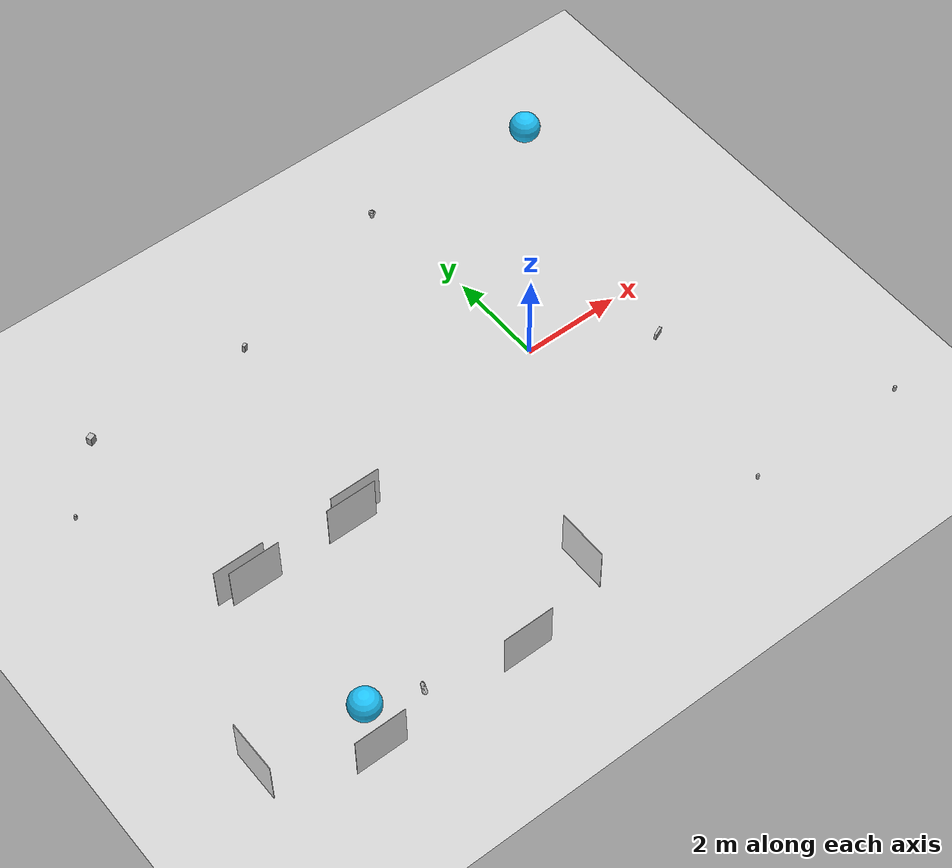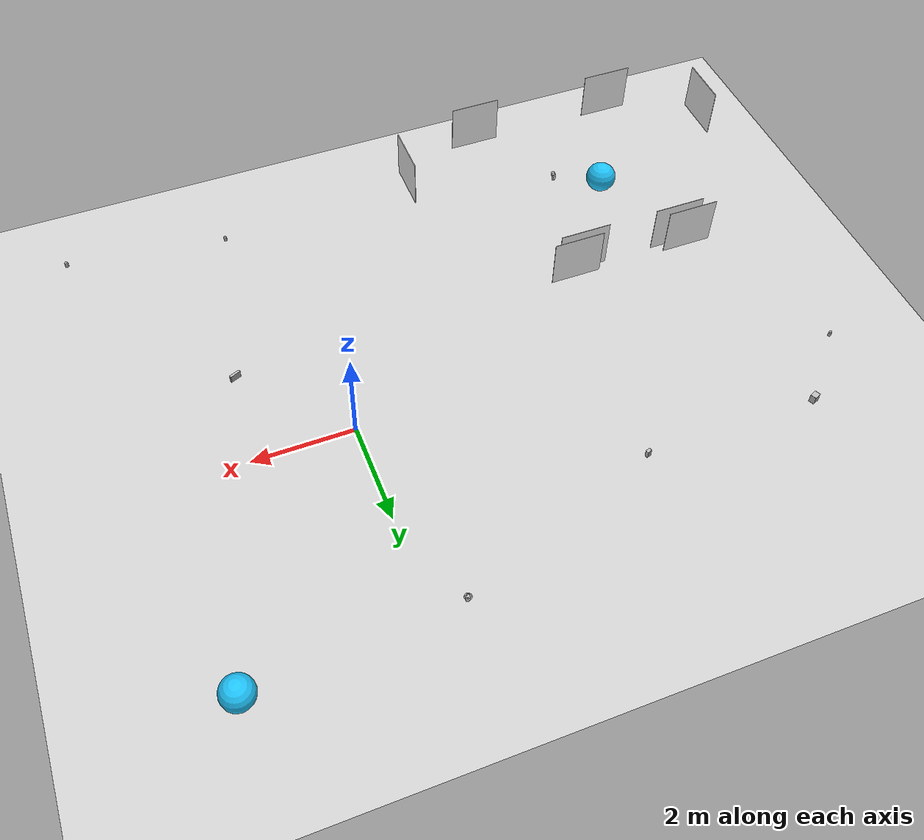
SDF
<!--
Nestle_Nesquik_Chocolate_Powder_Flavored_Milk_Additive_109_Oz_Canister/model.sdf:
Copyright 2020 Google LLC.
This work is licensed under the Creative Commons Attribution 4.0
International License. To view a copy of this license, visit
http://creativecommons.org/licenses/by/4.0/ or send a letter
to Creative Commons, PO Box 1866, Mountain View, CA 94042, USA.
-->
<sdf version="1.6">
 <world name="default">
  <physics name="5ms" type="dart">
   <max_step_size>0.005</max_step_size>
   <real_time_factor>1.0</real_time_factor>
  </physics>
  <plugin filename="gz-sim-physics-system" name="gz::sim::systems::Physics"/>
  <plugin filename="gz-sim-user-commands-system" name="gz::sim::systems::UserCommands"/>
  <plugin filename="gz-sim-scene-broadcaster-system" name="gz::sim::systems::SceneBroadcaster"/>
  <plugin filename="gz-sim-sensors-system" name="gz::sim::systems::Sensors"/>
  <plugin filename="gz-sim-imu-system" name="gz::sim::systems::Imu"/>
  <scene>
   <ambient>0.4 0.4 0.4 1</ambient>
   <background>0.7 0.7 0.7 1</background>
   <shadows>false</shadows>
   <grid>false</grid>
   <origin_visual>false</origin_visual>
  </scene>
  <model name="ground_plane">
   <static>true</static>
   <link name="link">
    <collision name="collision">
     <geometry><plane><normal>0 0 1</normal><size>100 100</size></plane></geometry>
     <surface><friction><ode><mu>0.0</mu><mu2>0.0</mu2></ode></friction></surface>
    </collision>
    <visual name="visual">
     <geometry><plane><normal>0 0 1</normal><size>100 100</size></plane></geometry>
     <material>
      <ambient>0.8 0.8 0.8 1</ambient>
      <diffuse>0.8 0.8 0.8 1</diffuse>
      <specular>0.8 0.8 0.8 1</specular>
     </material>
    </visual>
   </link>
  </model>
  <model name="Ball_01_001">
   <static>true</static>
   <include><uri>model://aws_robomaker_residential_Ball_01</uri></include>
   <pose>3.295503 4.225674 0.318684 0 -0 0</pose>
  </model>
  <model name="Ball_01_003">
   <static>true</static>
   <include><uri>model://aws_robomaker_residential_Ball_01</uri></include>
   <pose>-6.945503 -4.22174 0.318684 0 -0 0</pose>
  </model>
  <model name="AprilTag16_05_01">
   <static>true</static>
   <include><uri>model://AprilTag16_05_01</uri></include>
   <pose>-7.5 -5.492466 1.5 0 0 0</pose>
  </model>
  <model name="AprilTag16_05_02">
   <static>true</static>
   <include><uri>model://AprilTag16_05_02</uri></include>
   <pose>-4.5 -5.492466 1.5 0 0 0</pose>
  </model>
  <model name="AprilTag16_05_03">
   <static>true</static>
   <include><uri>model://AprilTag16_05_03</uri></include>
   <pose>-2.71 -4.71 1.5  0 0 1.5708</pose>
  </model>
  <model name="AprilTag16_05_04">
   <static>true</static>
   <include><uri>model://AprilTag16_05_04</uri></include>
   <pose>-9.29 -4.52 1.5 0 0 1.5708</pose>
  </model>
  <model name="AprilTag16_05_05">
   <static>true</static>
   <include><uri>model://AprilTag16_05_05</uri></include>
   <pose>-7.19 -1.570208 1.3 0 0 0</pose>
  </model>
  <model name="AprilTag16_05_06">
   <static>true</static>
   <include><uri>model://AprilTag16_05_06</uri></include>
   <pose>-5.19 -1.570208 1.3 0 0 0</pose>
  </model>
  <model name="AprilTag16_05_07">
   <static>true</static>
   <include><uri>model://AprilTag16_05_07</uri></include>
   <pose>-7.39 -1.4087 1.3 0 0 0</pose>
  </model>
  <model name="AprilTag16_05_08">
   <static>true</static>
   <include><uri>model://AprilTag16_05_08</uri></include>
   <pose>-4.99 -1.4087 1.3 0 0 0</pose>
  </model>
  <model name="coke_green_01">
   <static>false</static>
   <include><uri>model://movable_coke_can_green</uri></include>
   <pose>4.2 -5.2 0.75 0 0 0.4</pose>
  </model>
  <model name="milk_cup_01">
   <static>false</static>
   <include><uri>model://milk_cup</uri></include>
   <pose>-0.55 4.11 0.55 0 0 0</pose>
  </model>
  <model name="nesquick_01">
   <static>false</static>
   <include><uri>model://Nestle_Nesquik_Chocolate_Powder_Flavored_Milk_Additive_109_Oz_Canister</uri></include>
   <pose>1.1 -5.0 0.55 0 0 -0.4</pose>
  </model>
  <model name="snacks_01">
   <static>false</static>
   <include><uri>model://Black_Forest_Fruit_Snacks_Juicy_Filled_Centers_10_pouches_9_oz_total</uri></include>
   <pose>1.8 -1.5 0.55 0 0 0.4</pose>
  </model>
  <model name="l_tyrosine_01">
   <static>false</static>
   <include><uri>model://LTyrosine</uri></include>
   <pose>-8.8 1.6 0.75 0 0 0.4</pose>
  </model>
  <model name="u_by_kotex_01">
   <static>false</static>
   <include><uri>model://U_By_Kotex_Cleanwear_Heavy_Flow_Pads_32_Ct</uri></include>
   <pose>-7.7 2.8 0.75 0 0 0.4</pose>
  </model>
  <model name="nescafe_01">
   <static>false</static>
   <include><uri>model://Nescafe_Memento_Latte_Caramel_8_08_oz_23_g_packets_64_oz_184_g</uri></include>
   <pose>-4.4 2.8 0.75 0 0 0.4</pose>
  </model>
  <model name="tennis_shoe_01">
   <static>false</static>
   <include><uri>model://ASICS_GELBlur33_20_GS_BlackWhiteSafety_Orange</uri></include>
   <pose>-6.0 -4.6 0.3 0 0 -0.3</pose>
  </model>
  <light name="sun" type="directional">
   <pose>0 0 10 0 -0 0</pose>
   <diffuse>0.8 0.8 0.8 1</diffuse>
   <specular>0.2 0.2 0.2 1</specular>
   <attenuation>
    <range>1000</range>
    <constant>0.9</constant>
    <linear>0.01</linear>
    <quadratic>0.001</quadratic>
   </attenuation>
   <direction>-0.5 0.1 -0.9</direction>
  </light>
  <light name="LivingRoom_CeilingLight_0" type="point">
   <pose>1.194296 4.155759 2.2 0 -0 0</pose>
   <diffuse>0.5 0.5 0.5 1</diffuse>
   <specular>0.1 0.1 0.1 1</specular>
   <attenuation>
    <range>20</range>
    <constant>0.32</constant>
    <linear>0.01</linear>
    <quadratic>0.03</quadratic>
   </attenuation>
   <cast_shadows>0</cast_shadows>
   <direction>0 0 -1</direction>
  </light>
  <light name="LivingRoom_CeilingLight_1" type="point">
   <pose>1.194296 -1.589959 2.2 0 -0 0</pose>
   <diffuse>0.5 0.5 0.5 1</diffuse>
   <specular>0.1 0.1 0.1 1</specular>
   <attenuation>
    <range>20</range>
    <constant>0.05</constant>
    <linear>0.01</linear>
    <quadratic>0.09</quadratic>
   </attenuation>
   <cast_shadows>0</cast_shadows>
   <direction>0 0 -1</direction>
  </light>
  <light name="LivingRoom_WallLight_0" type="point">
   <pose>1.76956 -5.444370 2.2 0 -0 0</pose>
   <diffuse>0.24 0.24 0.24 1</diffuse>
   <specular>0.1 0.1 0.1 1</specular>
   <attenuation>
    <range>20</range>
    <constant>0.12</constant>
    <linear>0.00</linear>
    <quadratic>0.03</quadratic>
   </attenuation>
   <direction>0 0 -1</direction>
  </light>
  <light name="LivingRoom_WallLight_1" type="point">
   <pose>-0.13826 -5.444370 2.2 0 -0 0</pose>
   <diffuse>0.24 0.24 0.24 1</diffuse>
   <specular>0.1 0.1 0.1 1</specular>
   <attenuation>
    <range>20</range>
    <constant>0.12</constant>
    <linear>0.00</linear>
    <quadratic>0.03</quadratic>
   </attenuation>
   <direction>0 0 -1</direction>
  </light>
  <light name="TV_Light_0" type="point">
   <pose>0.8269 -4.939577 1.1 0 -0 0</pose>
   <diffuse>0.31372 0.31372 0.34901 1</diffuse>
   <specular>0.1 0.1 0.1 1</specular>
   <attenuation>
    <range>3</range>
    <constant>0.10</constant>
    <linear>0.04</linear>
    <quadratic>0.50</quadratic>
   </attenuation>
   <direction>0 0 -1</direction>
  </light>
  <light name="BedRoom_Portrait_Light_0" type="spot">
   <pose>-6.190379 -1.829697 1.5587 0.3 -0 0.0</pose>
   <diffuse>0.5 0.5 0.5 1</diffuse>
   <specular>0.1 0.1 0.1 1</specular>
   <attenuation>
    <range>20</range>
    <constant>0.50</constant>
    <linear>0.01</linear>
    <quadratic>0.00</quadratic>
   </attenuation>
   <spot><inner_angle>0.6</inner_angle><outer_angle>1.0</outer_angle><falloff>1.0</falloff></spot>
   <direction>0 0 -1</direction>
  </light>
  <light name="BedRoom_CeilingLight_0" type="point">
   <pose>-6.451061 -0.692040 2.000000 0 -0 0</pose>
   <diffuse>0.5 0.5 0.5 1</diffuse>
   <specular>0.1 0.1 0.1 1</specular>
   <attenuation>
    <range>20</range>
    <constant>0.32</constant>
    <linear>0.01</linear>
    <quadratic>0.03</quadratic>
   </attenuation>
   <cast_shadows>0</cast_shadows>
   <direction>0 0 -1</direction>
  </light>
  <light name="Kitchen_CeilingLight_0" type="point">
   <pose>7.8582 -1.5905 2.280000 0 -0 0</pose>
   <diffuse>0.5 0.5 0.5 1</diffuse>
   <specular>0.1 0.1 0.1 1</specular>
   <attenuation>
    <range>20</range>
    <constant>0.3</constant>
    <linear>0.01</linear>
    <quadratic>0.01</quadratic>
   </attenuation>
   <cast_shadows>0</cast_shadows>
   <direction>0 0 -1</direction>
  </light>
 </world>
</sdf>

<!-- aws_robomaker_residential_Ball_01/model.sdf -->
<sdf version="1.6">
  <model name="aws_robomaker_residential_Ball_01">
    <link name="link">
      <inertial>
        <mass>0.12</mass>
        <!-- 2r = 62cm -->
        <inertia>
          <ixx>0.030752</ixx>
          <ixy>0</ixy>
          <ixz>0</ixz>
          <iyy>0.030752</iyy>
          <iyz>0</iyz>
          <izz>0.030752</izz>
        </inertia>
      </inertial>
      <collision name="collision">

        <geometry>
          <sphere>
            <radius>0.31 </radius>
          </sphere>

        </geometry>

        <surface>
          <friction>
            <ode>
              <mu>0.85</mu>
              <mu2>0.85</mu2>
            </ode>
          </friction>

          <!-- Add some bounciness to the ball -->
          <contact>
            <ode>
              <kd>8500</kd>
              <max_vel>5.1</max_vel>
            </ode>
          </contact>
        </surface>

      </collision>
      <visual name="visual">
	<geometry>
          <sphere>
            <radius>0.31 </radius>
          </sphere>
        </geometry>
        <material>
          <diffuse>0.12 0.76 0.97 1</diffuse>
          <ambient>0.03 0.21 0.27 1</ambient>
        </material>
        <meta> <layer> 1 </layer></meta>
      </visual>
    </link>
    <static>true</static>
  </model>
</sdf>

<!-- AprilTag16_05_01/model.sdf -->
<sdf version="1.6">
  <model name="AprilTag16_05_01">
    <link name="link">
      <collision name="collision">
        <geometry>
          <box><size>1.0 0.01 1.0</size></box>
        </geometry>
      </collision>
      <visual name="visual">
        <geometry>
          <box><size>1.0 0.01 1.0</size></box>
        </geometry>
        <material>
          <diffuse>1 1 1 1</diffuse>
          <pbr>
            <metal>
              <albedo_map>model://AprilTag16_05_01/meshes/tag16_05_00001.png</albedo_map>
            </metal>
          </pbr>
        </material>
      </visual>
    </link>
    <static>1</static>
  </model>
</sdf>

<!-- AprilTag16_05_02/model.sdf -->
<sdf version="1.6">
  <model name="AprilTag16_05_02">
    <link name="link">
      <collision name="collision">
        <geometry>
          <box><size>1.0 0.01 1.0</size></box>
        </geometry>
      </collision>
      <visual name="visual">
        <geometry>
          <box><size>1.0 0.01 1.0</size></box>
        </geometry>
        <material>
          <diffuse>1 1 1 1</diffuse>
          <pbr>
            <metal>
              <albedo_map>model://AprilTag16_05_02/meshes/tag16_05_00002.png</albedo_map>
            </metal>
          </pbr>
        </material>
      </visual>
    </link>
    <static>1</static>
  </model>
</sdf>

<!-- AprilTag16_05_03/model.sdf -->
<sdf version="1.6">
  <model name="AprilTag16_05_03">
    <link name="link">
      <collision name="collision">
        <geometry>
          <box><size>1.0 0.01 1.0</size></box>
        </geometry>
      </collision>
      <visual name="visual">
        <geometry>
          <box><size>1.0 0.01 1.0</size></box>
        </geometry>
        <material>
          <diffuse>1 1 1 1</diffuse>
          <pbr>
            <metal>
              <albedo_map>model://AprilTag16_05_03/meshes/tag16_05_00003.png</albedo_map>
            </metal>
          </pbr>
        </material>
      </visual>
    </link>
    <static>1</static>
  </model>
</sdf>

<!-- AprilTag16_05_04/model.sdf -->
<sdf version="1.6">
  <model name="AprilTag16_05_04">
    <link name="link">
      <collision name="collision">
        <geometry>
          <box><size>1.0 0.01 1.0</size></box>
        </geometry>
      </collision>
      <visual name="visual">
        <geometry>
          <box><size>1.0 0.01 1.0</size></box>
        </geometry>
        <material>
          <diffuse>1 1 1 1</diffuse>
          <pbr>
            <metal>
              <albedo_map>model://AprilTag16_05_04/meshes/tag16_05_00004.png</albedo_map>
            </metal>
          </pbr>
        </material>
      </visual>
    </link>
    <static>1</static>
  </model>
</sdf>

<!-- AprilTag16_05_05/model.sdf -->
<sdf version="1.6">
  <model name="AprilTag16_05_05">
    <link name="link">
      <collision name="collision">
        <geometry>
          <box><size>1.0 0.01 1.0</size></box>
        </geometry>
      </collision>
      <visual name="visual">
        <geometry>
          <box><size>1.0 0.01 1.0</size></box>
        </geometry>
        <material>
          <diffuse>1 1 1 1</diffuse>
          <pbr>
            <metal>
              <albedo_map>model://AprilTag16_05_05/meshes/tag16_05_00005.png</albedo_map>
            </metal>
          </pbr>
        </material>
      </visual>
    </link>
    <static>1</static>
  </model>
</sdf>

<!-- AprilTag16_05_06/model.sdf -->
<sdf version="1.6">
  <model name="AprilTag16_05_06">
    <link name="link">
      <collision name="collision">
        <geometry>
          <box><size>1.0 0.01 1.0</size></box>
        </geometry>
      </collision>
      <visual name="visual">
        <geometry>
          <box><size>1.0 0.01 1.0</size></box>
        </geometry>
        <material>
          <diffuse>1 1 1 1</diffuse>
          <pbr>
            <metal>
              <albedo_map>model://AprilTag16_05_06/meshes/tag16_05_00006.png</albedo_map>
            </metal>
          </pbr>
        </material>
      </visual>
    </link>
    <static>1</static>
  </model>
</sdf>

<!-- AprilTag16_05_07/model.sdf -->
<sdf version="1.6">
  <model name="AprilTag16_05_07">
    <link name="link">
      <collision name="collision">
        <geometry>
          <box><size>1.0 0.01 1.0</size></box>
        </geometry>
      </collision>
      <visual name="visual">
        <geometry>
          <box><size>1.0 0.01 1.0</size></box>
        </geometry>
        <material>
          <diffuse>1 1 1 1</diffuse>
          <pbr>
            <metal>
              <albedo_map>model://AprilTag16_05_07/meshes/tag16_05_00007.png</albedo_map>
            </metal>
          </pbr>
        </material>
      </visual>
    </link>
    <static>1</static>
  </model>
</sdf>

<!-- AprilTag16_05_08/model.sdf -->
<sdf version="1.6">
  <model name="AprilTag16_05_08">
    <link name="link">
      <collision name="collision">
        <geometry>
          <box><size>1.0 0.01 1.0</size></box>
        </geometry>
      </collision>
      <visual name="visual">
        <geometry>
          <box><size>1.0 0.01 1.0</size></box>
        </geometry>
        <material>
          <diffuse>1 1 1 1</diffuse>
          <pbr>
            <metal>
              <albedo_map>model://AprilTag16_05_08/meshes/tag16_05_00008.png</albedo_map>
            </metal>
          </pbr>
        </material>
      </visual>
    </link>
    <static>1</static>
  </model>
</sdf>

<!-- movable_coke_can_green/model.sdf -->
<sdf version="1.6">
    <model name="movable_coke_can_green">
        <link name="link">
            <inertial>
                <pose>0 0 0 0 0 0</pose>
                <mass>0.0149</mass>
                <inertia>
                <ixx>0.00001</ixx>
                <ixy>0.0</ixy>
                <ixz>0.0</ixz>
                <iyy>0.00001</iyy>
                <iyz>0.0</iyz>
                <izz>0.00001</izz>
                </inertia>
            </inertial>
            <collision name="collision">
                <pose>0 0 0.061 0 0 0</pose>
                <geometry>
                    <cylinder>
                    <radius>0.033</radius>
                    <length>0.122</length>
                    </cylinder>
                </geometry>
            </collision>
            <visual name="visual">
                <geometry>
                    <mesh>
                        <uri>model://movable_coke_can_green/meshes/coke_can.obj</uri>
                        <scale>1 1 1</scale>
                    </mesh>
                </geometry>
            </visual>
        </link>
    </model>
</sdf>

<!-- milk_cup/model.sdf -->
<sdf version="1.11">
  <model name="milk_cup">
    <link name="body">
      <inertial auto="true" />
      <collision name="collision">
        <density>10.0</density>
        <geometry>
          <mesh optimization="convex_decomposition">
            <uri>models://milk_cup/mesh.obj</uri>
            <scale>0.06 0.06 0.06</scale>
          </mesh>
        </geometry>
      </collision>
      <visual name="visual">
        <geometry>
          <mesh>
            <uri>models://milk_cup/mesh.obj</uri>
            <scale>0.06 0.06 0.06</scale>
          </mesh>
        </geometry>
      </visual>
    </link>
  </model>
</sdf>

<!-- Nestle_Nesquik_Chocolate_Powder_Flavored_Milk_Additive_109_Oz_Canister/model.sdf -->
<sdf version="1.6">
  <model name="Nestle_Nesquik_Chocolate_Powder_Flavored_Milk_Additive_109_Oz_Canister">
    <link name="link_0">
      <visual name="visual">
        <geometry>
          <mesh>
            <uri>meshes/model.obj</uri>
          </mesh>
        </geometry>
      </visual>
      <collision name="collision_0">
        <geometry>
          <mesh>
            <uri>meshes/model.obj</uri>
          </mesh>
        </geometry>
      </collision>
    </link>
  </model>
</sdf>

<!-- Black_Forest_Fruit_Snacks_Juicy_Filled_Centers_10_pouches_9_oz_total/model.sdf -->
<sdf version="1.6">
  <model name="Black_Forest_Fruit_Snacks_Juicy_Filled_Centers_10_pouches_9_oz_total">
    <link name="link_0">
      <visual name="visual">
        <geometry>
          <mesh>
            <uri>meshes/model.obj</uri>
          </mesh>
        </geometry>
      </visual>
      <collision name="collision_0">
        <geometry>
          <mesh>
            <uri>meshes/model.obj</uri>
          </mesh>
        </geometry>
      </collision>
    </link>
  </model>
</sdf>

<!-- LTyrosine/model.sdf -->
<sdf version="1.6">
  <model name="LTyrosine">
    <link name="link_0">
      <visual name="visual">
        <geometry>
          <mesh>
            <uri>meshes/model.obj</uri>
          </mesh>
        </geometry>
      </visual>
      <collision name="collision_0">
        <geometry>
          <mesh>
            <uri>meshes/model.obj</uri>
          </mesh>
        </geometry>
      </collision>
    </link>
  </model>
</sdf>

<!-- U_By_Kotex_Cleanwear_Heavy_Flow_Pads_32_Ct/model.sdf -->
<sdf version="1.6">
  <model name="U_By_Kotex_Cleanwear_Heavy_Flow_Pads_32_Ct">
    <link name="link_0">
      <visual name="visual">
        <geometry>
          <mesh>
            <uri>meshes/model.obj</uri>
          </mesh>
        </geometry>
      </visual>
      <collision name="collision_0">
        <geometry>
          <mesh>
            <uri>meshes/model.obj</uri>
          </mesh>
        </geometry>
      </collision>
    </link>
  </model>
</sdf>

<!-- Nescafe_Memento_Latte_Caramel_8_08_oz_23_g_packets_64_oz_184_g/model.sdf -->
<sdf version="1.6">
  <model name="Nescafe_Memento_Latte_Caramel_8_08_oz_23_g_packets_64_oz_184_g">
    <link name="link_0">
      <visual name="visual">
        <geometry>
          <mesh>
            <uri>meshes/model.obj</uri>
          </mesh>
        </geometry>
      </visual>
      <collision name="collision_0">
        <geometry>
          <mesh>
            <uri>meshes/model.obj</uri>
          </mesh>
        </geometry>
      </collision>
    </link>
  </model>
</sdf>

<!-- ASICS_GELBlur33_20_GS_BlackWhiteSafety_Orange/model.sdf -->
<sdf version="1.6">
  <model name="ASICS_GELBlur33_20_GS_BlackWhiteSafety_Orange">
    <link name="link_0">
      <visual name="visual">
        <geometry>
          <mesh>
            <uri>meshes/model.obj</uri>
          </mesh>
        </geometry>
      </visual>
      <collision name="collision_0">
        <geometry>
          <mesh>
            <uri>meshes/model.obj</uri>
          </mesh>
        </geometry>
      </collision>
    </link>
  </model>
</sdf>
